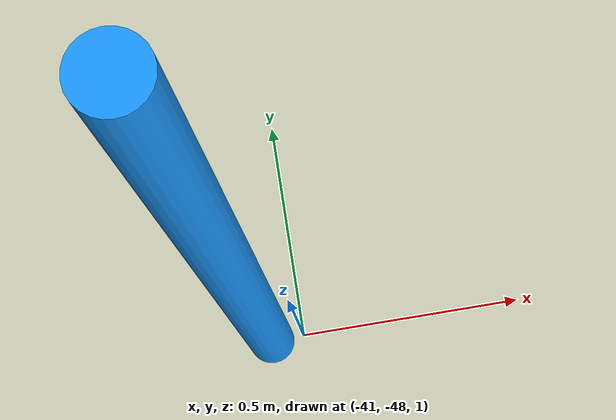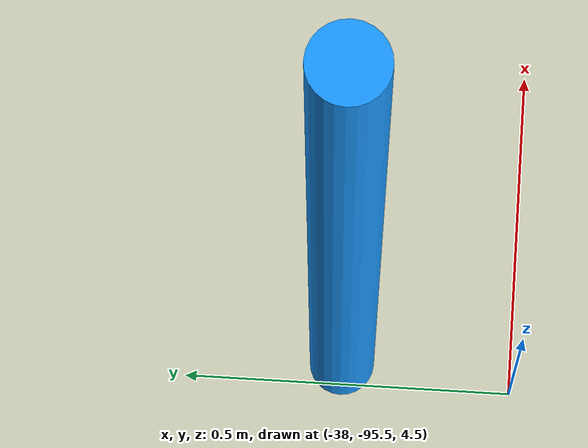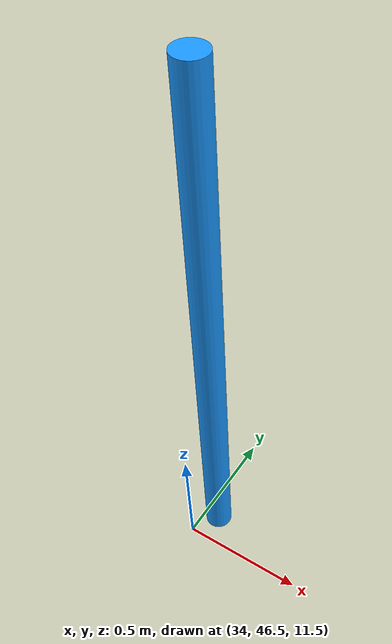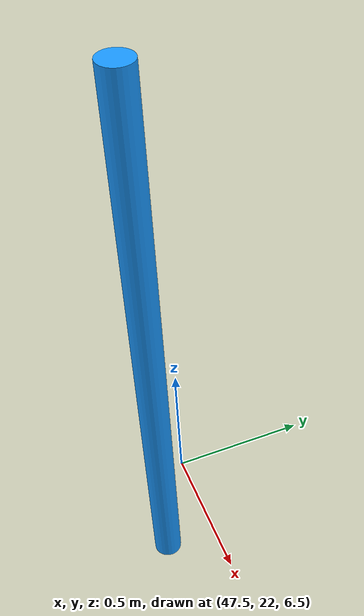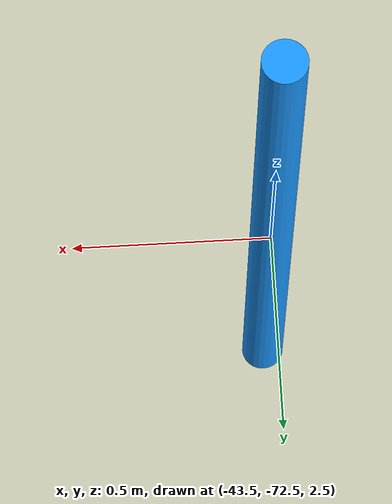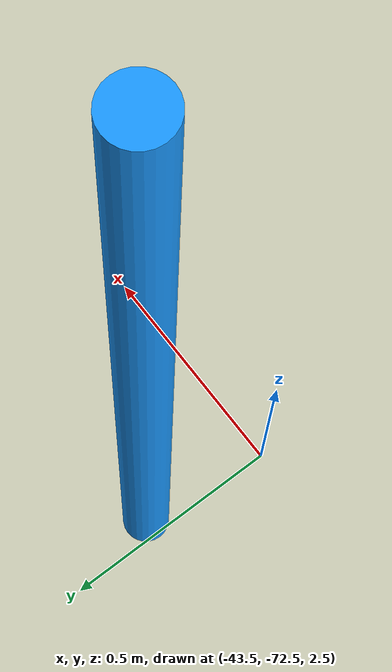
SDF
<sdf version="1.9">
 <world name="jezero_heldout_margin_rocks_k05_full">
  <physics name="1ms" type="ignored">
   <max_step_size>0.001</max_step_size>
   <real_time_factor>1</real_time_factor>
  </physics>
  <gravity>0 0 -3.721</gravity>
  <plugin filename="gz-sim-physics-system" name="gz::sim::systems::Physics"/>
  <plugin filename="gz-sim-user-commands-system" name="gz::sim::systems::UserCommands"/>
  <plugin filename="gz-sim-scene-broadcaster-system" name="gz::sim::systems::SceneBroadcaster"/>
  <scene><ambient>0.5 0.4 0.35 1</ambient><background>0.85 0.65 0.50 1</background><grid>false</grid></scene>
  <light type="directional" name="sun">
   <pose>0 0 100 0 0 0</pose>
   <diffuse>0.9 0.85 0.8 1</diffuse>
   <direction>-0.5 0.3 -0.8</direction>
  </light>
  <model name="waypoint_sol1175">
   <static>true</static>
   <pose>-37.95 -95.24 5.40 0 0 0</pose>
   <link name="link">
    <visual name="v">
     <geometry><cylinder><radius>0.05</radius><length>2.0</length></cylinder></geometry>
     <material><ambient>0.1 0.6 1 1</ambient><diffuse>0.1 0.6 1 1</diffuse></material>
    </visual>
   </link>
  </model>
  <model name="waypoint_sol1176">
   <static>true</static>
   <pose>-43.46 -72.21 3.50 0 0 0</pose>
   <link name="link">
    <visual name="v">
     <geometry><cylinder><radius>0.05</radius><length>2.0</length></cylinder></geometry>
     <material><ambient>0.1 0.6 1 1</ambient><diffuse>0.1 0.6 1 1</diffuse></material>
    </visual>
   </link>
  </model>
  <model name="waypoint_sol1177">
   <static>true</static>
   <pose>-41.07 -48.01 2.06 0 0 0</pose>
   <link name="link">
    <visual name="v">
     <geometry><cylinder><radius>0.05</radius><length>2.0</length></cylinder></geometry>
     <material><ambient>0.1 0.6 1 1</ambient><diffuse>0.1 0.6 1 1</diffuse></material>
    </visual>
   </link>
  </model>
  <model name="waypoint_sol1182">
   <static>true</static>
   <pose>47.72 21.85 7.32 0 0 0</pose>
   <link name="link">
    <visual name="v">
     <geometry><cylinder><radius>0.05</radius><length>2.0</length></cylinder></geometry>
     <material><ambient>0.1 0.6 1 1</ambient><diffuse>0.1 0.6 1 1</diffuse></material>
    </visual>
   </link>
  </model>
  <model name="waypoint_sol1204">
   <static>true</static>
   <pose>34.13 46.52 12.70 0 0 0</pose>
   <link name="link">
    <visual name="v">
     <geometry><cylinder><radius>0.05</radius><length>2.0</length></cylinder></geometry>
     <material><ambient>0.1 0.6 1 1</ambient><diffuse>0.1 0.6 1 1</diffuse></material>
    </visual>
   </link>
  </model>
 </world>
</sdf>
